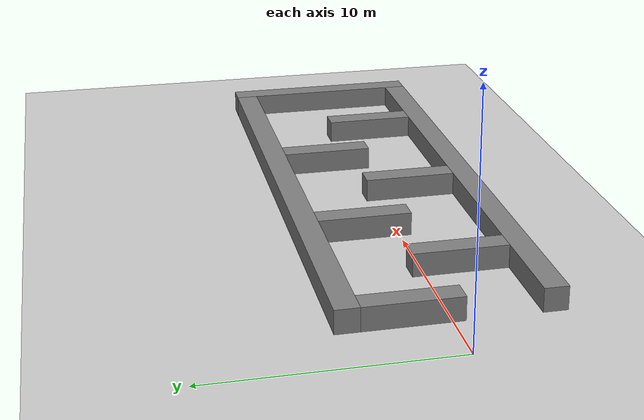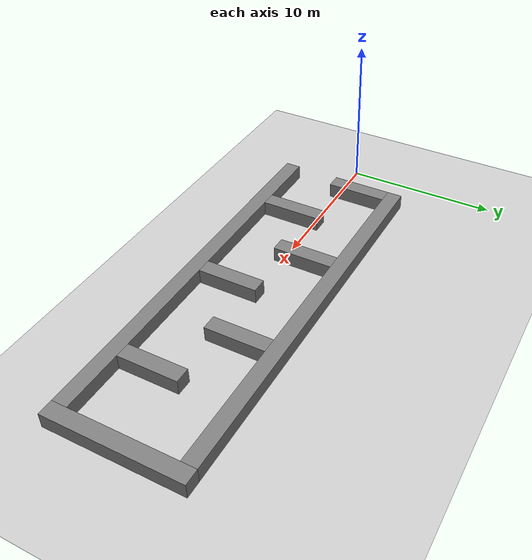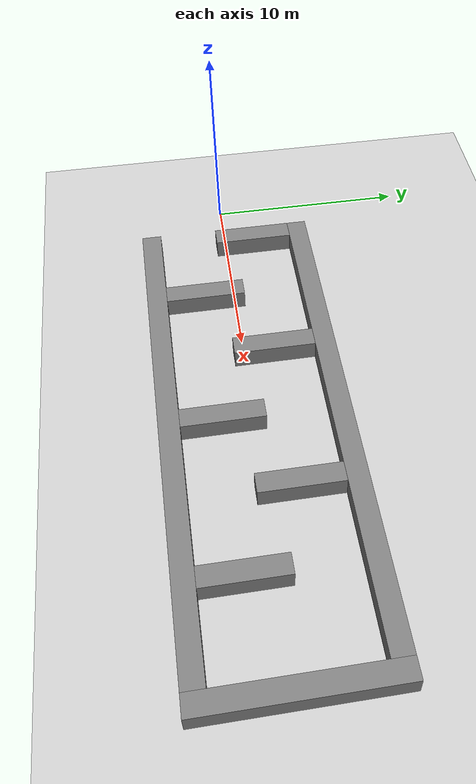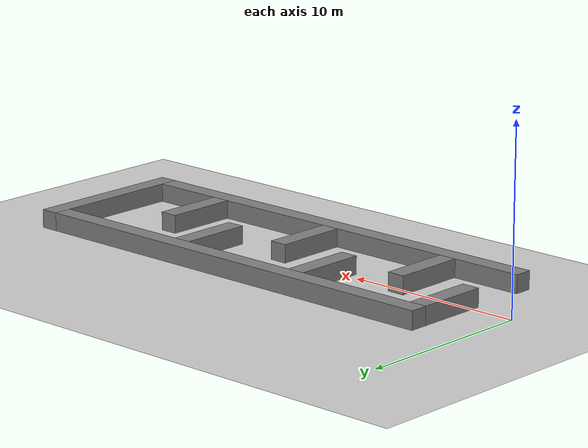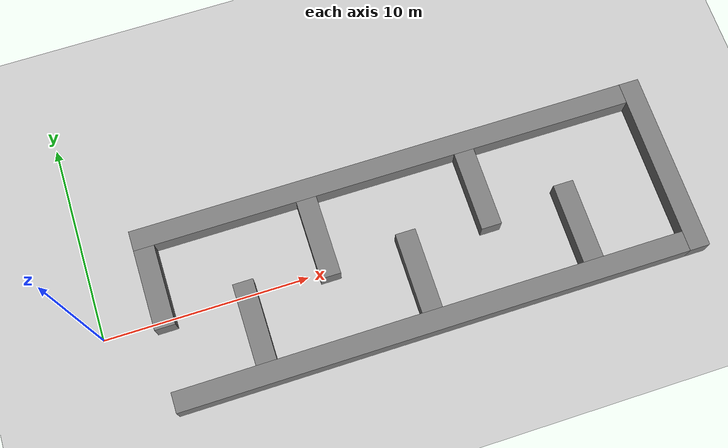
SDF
<sdf version="1.8">
 <world name="demo">
  <plugin filename="gz-sim-physics-system" name="gz::sim::systems::Physics"/>
  <plugin filename="gz-sim-sensors-system" name="gz::sim::systems::Sensors">
   <render_engine>ogre2</render_engine>
  </plugin>
  <plugin filename="gz-sim-scene-broadcaster-system" name="gz::sim::systems::SceneBroadcaster"/>
  <plugin filename="gz-sim-user-commands-system" name="gz::sim::systems::UserCommands"/>
  <plugin filename="BasicSystem" name="ros_gz_example_gazebo::BasicSystem"/>
  <plugin filename="FullSystem" name="ros_gz_example_gazebo::FullSystem"/>
  <light name="sun" type="directional">
   <cast_shadows>false</cast_shadows>
   <pose>0 0 10 0 0 0</pose>
   <diffuse>0.8 0.8 0.8 1</diffuse>
   <specular>0.2 0.2 0.2 1</specular>
   <attenuation>
    <range>1000</range>
    <constant>0.9</constant>
    <linear>0.01</linear>
    <quadratic>0.001</quadratic>
   </attenuation>
   <direction>-0.5 0.1 -0.9</direction>
  </light>
  <model name="ground_plane">
   <static>true</static>
   <link name="link">
    <collision name="collision">
     <geometry><plane><normal>0 0 1</normal><size>100 100</size></plane></geometry>
    </collision>
    <visual name="visual">
     <geometry><plane><normal>0 0 1</normal><size>100 100</size></plane></geometry>
     <material>
      <ambient>0.8 0.8 0.8 1</ambient>
      <diffuse>0.8 0.8 0.8 1</diffuse>
      <specular>0.8 0.8 0.8 1</specular>
     </material>
    </visual>
   </link>
  </model>
  <model name="labyrinth">
   <static>true</static>
   <pose>3 0 0.5 0 0 0</pose>
   <link name="wall1">
    <pose>0 1.5 0 0 0 0</pose>
    <collision name="collision1"><geometry><box><size>1 4 1</size></box></geometry></collision>
    <visual name="visual1">
     <geometry><box><size>1 4 1</size></box></geometry>
     <material><ambient>0.3 0.3 0.3 1</ambient><diffuse>0.5 0.5 0.5 1</diffuse></material>
    </visual>
   </link>
   <link name="wall2">
    <pose>8 1.5 0 0 0 0</pose>
    <collision name="collision1"><geometry><box><size>1 4 1</size></box></geometry></collision>
    <visual name="visual1">
     <geometry><box><size>1 4 1</size></box></geometry>
     <material><ambient>0.3 0.3 0.3 1</ambient><diffuse>0.5 0.5 0.5 1</diffuse></material>
    </visual>
   </link>
   <link name="wall3">
    <pose>16 1.5 0 0 0 0</pose>
    <collision name="collision1"><geometry><box><size>1 4 1</size></box></geometry></collision>
    <visual name="visual1">
     <geometry><box><size>1 4 1</size></box></geometry>
     <material><ambient>0.3 0.3 0.3 1</ambient><diffuse>0.5 0.5 0.5 1</diffuse></material>
    </visual>
   </link>
   <link name="wall4">
    <pose>12 -1.5 0 0 0 0</pose>
    <collision name="collision1"><geometry><box><size>1 4 1</size></box></geometry></collision>
    <visual name="visual1">
     <geometry><box><size>1 4 1</size></box></geometry>
     <material><ambient>0.3 0.3 0.3 1</ambient><diffuse>0.5 0.5 0.5 1</diffuse></material>
    </visual>
   </link>
   <link name="wall5">
    <pose>4 -1.5 0 0 0 0</pose>
    <collision name="collision1"><geometry><box><size>1 4 1</size></box></geometry></collision>
    <visual name="visual1">
     <geometry><box><size>1 4 1</size></box></geometry>
     <material><ambient>0.3 0.3 0.3 1</ambient><diffuse>0.5 0.5 0.5 1</diffuse></material>
    </visual>
   </link>
   <link name="wall6">
    <pose>20 -1.5 0 0 0 0</pose>
    <collision name="collision1"><geometry><box><size>1 4 1</size></box></geometry></collision>
    <visual name="visual1">
     <geometry><box><size>1 4 1</size></box></geometry>
     <material><ambient>0.3 0.3 0.3 1</ambient><diffuse>0.5 0.5 0.5 1</diffuse></material>
    </visual>
   </link>
   <link name="wall7">
    <pose>25 0 0 0 0 0</pose>
    <collision name="collision1"><geometry><box><size>1 9 1</size></box></geometry></collision>
    <visual name="visual1">
     <geometry><box><size>1 9 1</size></box></geometry>
     <material><ambient>0.3 0.3 0.3 1</ambient><diffuse>0.5 0.5 0.5 1</diffuse></material>
    </visual>
   </link>
   <link name="wall8">
    <pose>12 -4. 0 0 0 0</pose>
    <collision name="collision1"><geometry><box><size>25 1 1</size></box></geometry></collision>
    <visual name="visual1">
     <geometry><box><size>25 1 1</size></box></geometry>
     <material><ambient>0.3 0.3 0.3 1</ambient><diffuse>0.5 0.5 0.5 1</diffuse></material>
    </visual>
   </link>
   <link name="wall9">
    <pose>12 4. 0 0 0 0</pose>
    <collision name="collision1"><geometry><box><size>25 1 1</size></box></geometry></collision>
    <visual name="visual1">
     <geometry><box><size>25 1 1</size></box></geometry>
     <material><ambient>0.3 0.3 0.3 1</ambient><diffuse>0.5 0.5 0.5 1</diffuse></material>
    </visual>
   </link>
  </model>
  <plugin filename="gz-sim-triggered-publisher-system" name="gz::sim::systems::TriggeredPublisher">
   <input type="gz.msgs.Int32" topic="/keyboard/keypress"><match field="data">16777234</match></input>
   <output type="gz.msgs.Twist" topic="/model/diff_drive/cmd_vel">linear: {x: 0.0}, angular: {z: 0.5}</output>
  </plugin>
  <plugin filename="gz-sim-triggered-publisher-system" name="gz::sim::systems::TriggeredPublisher">
   <input type="gz.msgs.Int32" topic="/keyboard/keypress"><match field="data">16777235</match></input>
   <output type="gz.msgs.Twist" topic="/model/diff_drive/cmd_vel">linear: {x: 0.5}, angular: {z: 0.0}</output>
  </plugin>
  <plugin filename="gz-sim-triggered-publisher-system" name="gz::sim::systems::TriggeredPublisher">
   <input type="gz.msgs.Int32" topic="/keyboard/keypress"><match field="data">16777236</match></input>
   <output type="gz.msgs.Twist" topic="/model/diff_drive/cmd_vel">linear: {x: 0.0}, angular: {z: -0.5}</output>
  </plugin>
  <plugin filename="gz-sim-triggered-publisher-system" name="gz::sim::systems::TriggeredPublisher">
   <input type="gz.msgs.Int32" topic="/keyboard/keypress"><match field="data">16777237</match></input>
   <output type="gz.msgs.Twist" topic="/model/diff_drive/cmd_vel">linear: {x: -0.5}, angular: {z: 0.0}</output>
  </plugin>
  <plugin filename="gz-sim-triggered-publisher-system" name="gz::sim::systems::TriggeredPublisher">
   <input type="gz.msgs.Int32" topic="/keyboard/keypress"><match field="data">78</match></input>
   <output type="gz.msgs.Twist" topic="/model/diff_drive/cmd_vel">linear: {x: 0.5}, angular: {z: -0.5}</output>
  </plugin>
  <plugin filename="gz-sim-triggered-publisher-system" name="gz::sim::systems::TriggeredPublisher">
   <input type="gz.msgs.Int32" topic="/keyboard/keypress"><match field="data">86</match></input>
   <output type="gz.msgs.Twist" topic="/model/diff_drive/cmd_vel">linear: {x: 0.5}, angular: {z: 0.5}</output>
  </plugin>
  <plugin filename="gz-sim-triggered-publisher-system" name="gz::sim::systems::TriggeredPublisher">
   <input type="gz.msgs.Int32" topic="/keyboard/keypress"><match field="data">66</match></input>
   <output type="gz.msgs.Twist" topic="/model/diff_drive/cmd_vel">linear: {x: 0.0, y: 0.0, z: 0.0}, angular: {x: 0.0, y: 0.0, z: 0.0}</output>
  </plugin>
 </world>
</sdf>
